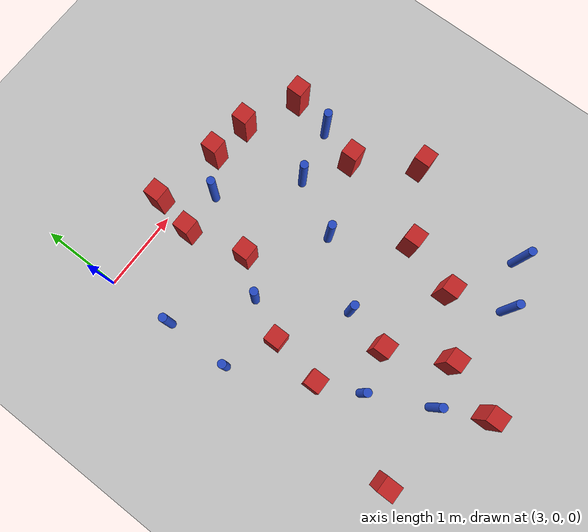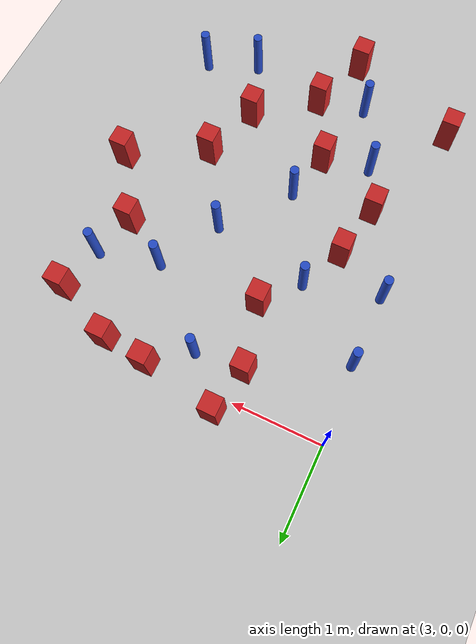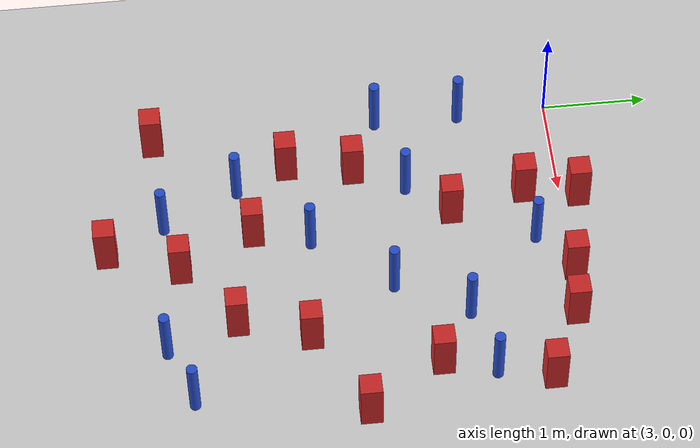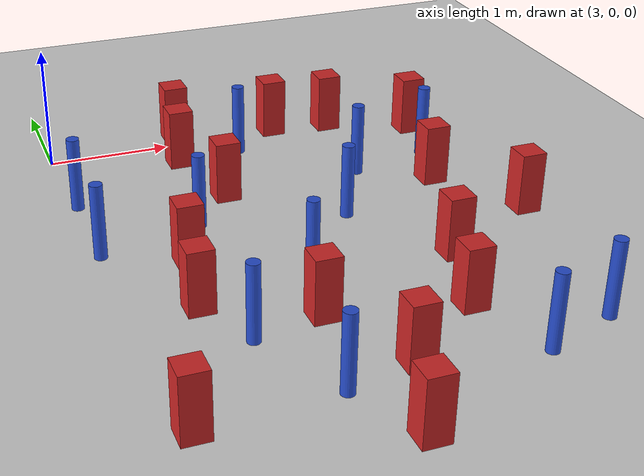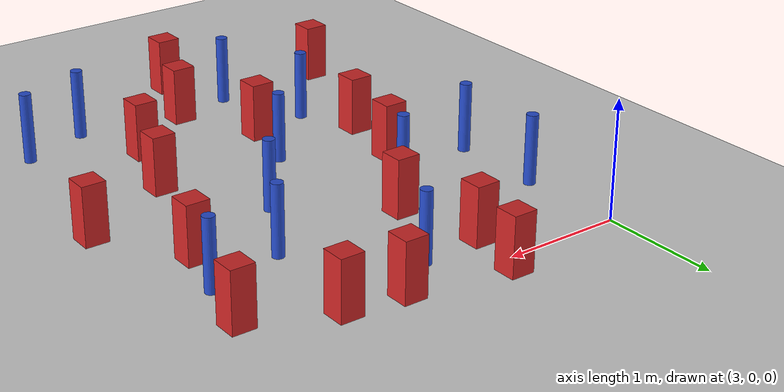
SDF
<sdf version="1.6">
 <world name="default">
  <model name="ground_plane">
   <static>1</static>
   <link name="link">
    <collision name="collision">
     <geometry><plane><normal>0 0 1</normal><size>100 100</size></plane></geometry>
     <surface><friction><ode><mu>100</mu><mu2>50</mu2></ode></friction></surface>
    </collision>
    <visual name="visual">
     <cast_shadows>0</cast_shadows>
     <geometry><plane><normal>0 0 1</normal><size>100 100</size></plane></geometry>
     <material>
      <ambient>1.0 1.0 1.0 1.0</ambient>
      <diffuse>0.8 0.8 0.8 1.0</diffuse>
      <specular>0.01 0.01 0.01 1.000000</specular>
     </material>
    </visual>
   </link>
  </model>
  <model name="pole_obstacle7">
   <static>true</static>
   <pose>5.50749667749 -3.81803511393 2.88873142074e-08 -9.90536690245e-09 4.6021994898e-07 -1.20965994966e-07</pose>
   <link name="link">
    <pose>0 0 0.3 0 -0 0</pose>
    <inertial>
     <mass>1</mass>
     <inertia><ixx>0.145833</ixx><ixy>0</ixy><ixz>0</ixz><iyy>0.145833</iyy><iyz>0</iyz><izz>0.125</izz></inertia>
    </inertial>
    <collision name="collision">
     <geometry><cylinder><radius>0.05</radius><length>.6</length></cylinder></geometry>
    </collision>
    <visual name="visual">
     <geometry><cylinder><radius>0.05</radius><length>.6</length></cylinder></geometry>
     <material>
      <script><name>Gazebo/Blue</name><uri>file://media/materials/scripts/gazebo.material</uri></script>
     </material>
    </visual>
   </link>
  </model>
  <model name="square_post_obstacle31">
   <static>true</static>
   <pose>4.20026988098 -1.06145336706 8.22691968438e-08 7.2212513382e-06 -7.54495500217e-07 2.29674213826e-05</pose>
   <link name="link">
    <pose>0 0 0.25 0 -0 0</pose>
    <inertial>
     <mass>100</mass>
     <inertia>
      <ixx>0.166667</ixx>
      <ixy>0</ixy>
      <ixz>0</ixz>
      <iyy>0.166667</iyy>
      <iyz>0</iyz>
      <izz>0.166667</izz>
     </inertia>
    </inertial>
    <collision name="collision"><geometry><box><size>.2 .2 .5</size></box></geometry></collision>
    <visual name="visual">
     <geometry><box><size>.2 .2 .5</size></box></geometry>
     <material>
      <script><name>Gazebo/Red</name><uri>file://media/materials/scripts/gazebo.material</uri></script>
     </material>
    </visual>
   </link>
  </model>
  <model name="pole_obstacle39">
   <static>true</static>
   <pose>6.07914142735 -3.60286633807 2.88873142074e-08 -9.90536690245e-09 4.6021994898e-07 -1.20965994966e-07</pose>
   <link name="link">
    <pose>0 0 0.3 0 -0 0</pose>
    <inertial>
     <mass>1</mass>
     <inertia><ixx>0.145833</ixx><ixy>0</ixy><ixz>0</ixz><iyy>0.145833</iyy><iyz>0</iyz><izz>0.125</izz></inertia>
    </inertial>
    <collision name="collision">
     <geometry><cylinder><radius>0.05</radius><length>.6</length></cylinder></geometry>
    </collision>
    <visual name="visual">
     <geometry><cylinder><radius>0.05</radius><length>.6</length></cylinder></geometry>
     <material>
      <script><name>Gazebo/Blue</name><uri>file://media/materials/scripts/gazebo.material</uri></script>
     </material>
    </visual>
   </link>
  </model>
  <model name="pole_obstacle48">
   <static>true</static>
   <pose>5.35859806863 -1.01544605363 2.88873142074e-08 -9.90536689582e-09 4.60219948995e-07 -1.20965994957e-07</pose>
   <link name="link">
    <pose>0 0 0.3 0 -0 0</pose>
    <inertial>
     <mass>1</mass>
     <inertia><ixx>0.145833</ixx><ixy>0</ixy><ixz>0</ixz><iyy>0.145833</iyy><iyz>0</iyz><izz>0.125</izz></inertia>
    </inertial>
    <collision name="collision">
     <geometry><cylinder><radius>0.05</radius><length>.6</length></cylinder></geometry>
    </collision>
    <visual name="visual">
     <geometry><cylinder><radius>0.05</radius><length>.6</length></cylinder></geometry>
     <material>
      <script><name>Gazebo/Blue</name><uri>file://media/materials/scripts/gazebo.material</uri></script>
     </material>
    </visual>
   </link>
  </model>
  <model name="square_post_obstacle50">
   <static>true</static>
   <pose>4.96751503702 0.0074582383252 8.22691968438e-08 7.2212513382e-06 -7.54495500217e-07 2.29674213826e-05</pose>
   <link name="link">
    <pose>0 0 0.25 0 -0 0</pose>
    <inertial>
     <mass>100</mass>
     <inertia>
      <ixx>0.166667</ixx>
      <ixy>0</ixy>
      <ixz>0</ixz>
      <iyy>0.166667</iyy>
      <iyz>0</iyz>
      <izz>0.166667</izz>
     </inertia>
    </inertial>
    <collision name="collision"><geometry><box><size>.2 .2 .5</size></box></geometry></collision>
    <visual name="visual">
     <geometry><box><size>.2 .2 .5</size></box></geometry>
     <material>
      <script><name>Gazebo/Red</name><uri>file://media/materials/scripts/gazebo.material</uri></script>
     </material>
    </visual>
   </link>
  </model>
  <model name="square_post_obstacle54">
   <static>true</static>
   <pose>6.33580919159 -2.04430219855 8.22691968438e-08 7.2212513382e-06 -7.54495500217e-07 2.29674213826e-05</pose>
   <link name="link">
    <pose>0 0 0.25 0 -0 0</pose>
    <inertial>
     <mass>100</mass>
     <inertia>
      <ixx>0.166667</ixx>
      <ixy>0</ixy>
      <ixz>0</ixz>
      <iyy>0.166667</iyy>
      <iyz>0</iyz>
      <izz>0.166667</izz>
     </inertia>
    </inertial>
    <collision name="collision"><geometry><box><size>.2 .2 .5</size></box></geometry></collision>
    <visual name="visual">
     <geometry><box><size>.2 .2 .5</size></box></geometry>
     <material>
      <script><name>Gazebo/Red</name><uri>file://media/materials/scripts/gazebo.material</uri></script>
     </material>
    </visual>
   </link>
  </model>
  <model name="square_post_obstacle64">
   <static>true</static>
   <pose>3.52086572161 -2.57109439381 8.22691968438e-08 7.2212513382e-06 -7.54495500217e-07 2.29674213826e-05</pose>
   <link name="link">
    <pose>0 0 0.25 0 -0 0</pose>
    <inertial>
     <mass>100</mass>
     <inertia>
      <ixx>0.166667</ixx>
      <ixy>0</ixy>
      <ixz>0</ixz>
      <iyy>0.166667</iyy>
      <iyz>0</iyz>
      <izz>0.166667</izz>
     </inertia>
    </inertial>
    <collision name="collision"><geometry><box><size>.2 .2 .5</size></box></geometry></collision>
    <visual name="visual">
     <geometry><box><size>.2 .2 .5</size></box></geometry>
     <material>
      <script><name>Gazebo/Red</name><uri>file://media/materials/scripts/gazebo.material</uri></script>
     </material>
    </visual>
   </link>
  </model>
  <model name="square_post_obstacle67">
   <static>true</static>
   <pose>3.1018461195 -3.83028561094 8.22691968438e-08 7.2212513382e-06 -7.54495500217e-07 2.29674213826e-05</pose>
   <link name="link">
    <pose>0 0 0.25 0 -0 0</pose>
    <inertial>
     <mass>100</mass>
     <inertia>
      <ixx>0.166667</ixx>
      <ixy>0</ixy>
      <ixz>0</ixz>
      <iyy>0.166667</iyy>
      <iyz>0</iyz>
      <izz>0.166667</izz>
     </inertia>
    </inertial>
    <collision name="collision"><geometry><box><size>.2 .2 .5</size></box></geometry></collision>
    <visual name="visual">
     <geometry><box><size>.2 .2 .5</size></box></geometry>
     <material>
      <script><name>Gazebo/Red</name><uri>file://media/materials/scripts/gazebo.material</uri></script>
     </material>
    </visual>
   </link>
  </model>
  <model name="pole_obstacle65">
   <static>true</static>
   <pose>6.03024125751 -0.854266662241 2.88873142074e-08 -9.90536689837e-09 4.60219948989e-07 -1.2096599496e-07</pose>
   <link name="link">
    <pose>0 0 0.3 0 -0 0</pose>
    <inertial>
     <mass>1</mass>
     <inertia><ixx>0.145833</ixx><ixy>0</ixy><ixz>0</ixz><iyy>0.145833</iyy><iyz>0</iyz><izz>0.125</izz></inertia>
    </inertial>
    <collision name="collision">
     <geometry><cylinder><radius>0.05</radius><length>.6</length></cylinder></geometry>
    </collision>
    <visual name="visual">
     <geometry><cylinder><radius>0.05</radius><length>.6</length></cylinder></geometry>
     <material>
      <script><name>Gazebo/Blue</name><uri>file://media/materials/scripts/gazebo.material</uri></script>
     </material>
    </visual>
   </link>
  </model>
  <model name="square_post_obstacle69">
   <static>true</static>
   <pose>4.27492066907 -2.94388003536 8.22691968438e-08 7.2212513382e-06 -7.54495500217e-07 2.29674213826e-05</pose>
   <link name="link">
    <pose>0 0 0.25 0 -0 0</pose>
    <inertial>
     <mass>100</mass>
     <inertia>
      <ixx>0.166667</ixx>
      <ixy>0</ixy>
      <ixz>0</ixz>
      <iyy>0.166667</iyy>
      <iyz>0</iyz>
      <izz>0.166667</izz>
     </inertia>
    </inertial>
    <collision name="collision"><geometry><box><size>.2 .2 .5</size></box></geometry></collision>
    <visual name="visual">
     <geometry><box><size>.2 .2 .5</size></box></geometry>
     <material>
      <script><name>Gazebo/Red</name><uri>file://media/materials/scripts/gazebo.material</uri></script>
     </material>
    </visual>
   </link>
  </model>
  <model name="square_post_obstacle73">
   <static>true</static>
   <pose>5.48747656037 -2.49697505619 8.22691968438e-08 7.2212513382e-06 -7.54495500217e-07 2.29674213826e-05</pose>
   <link name="link">
    <pose>0 0 0.25 0 -0 0</pose>
    <inertial>
     <mass>100</mass>
     <inertia>
      <ixx>0.166667</ixx>
      <ixy>0</ixy>
      <ixz>0</ixz>
      <iyy>0.166667</iyy>
      <iyz>0</iyz>
      <izz>0.166667</izz>
     </inertia>
    </inertial>
    <collision name="collision"><geometry><box><size>.2 .2 .5</size></box></geometry></collision>
    <visual name="visual">
     <geometry><box><size>.2 .2 .5</size></box></geometry>
     <material>
      <script><name>Gazebo/Red</name><uri>file://media/materials/scripts/gazebo.material</uri></script>
     </material>
    </visual>
   </link>
  </model>
  <model name="pole_obstacle80">
   <static>true</static>
   <pose>4.985046342 -1.68550418916 2.88873142074e-08 -9.90536689445e-09 4.60219948999e-07 -1.20965994956e-07</pose>
   <link name="link">
    <pose>0 0 0.3 0 -0 0</pose>
    <inertial>
     <mass>1</mass>
     <inertia><ixx>0.145833</ixx><ixy>0</ixy><ixz>0</ixz><iyy>0.145833</iyy><iyz>0</iyz><izz>0.125</izz></inertia>
    </inertial>
    <collision name="collision">
     <geometry><cylinder><radius>0.05</radius><length>.6</length></cylinder></geometry>
    </collision>
    <visual name="visual">
     <geometry><cylinder><radius>0.05</radius><length>.6</length></cylinder></geometry>
     <material>
      <script><name>Gazebo/Blue</name><uri>file://media/materials/scripts/gazebo.material</uri></script>
     </material>
    </visual>
   </link>
  </model>
  <model name="pole_obstacle93">
   <static>true</static>
   <pose>3.0476981293 -0.860500871558 2.88873142074e-08 -9.90536689285e-09 4.60219949002e-07 -1.20965994953e-07</pose>
   <link name="link">
    <pose>0 0 0.3 0 -0 0</pose>
    <inertial>
     <mass>1</mass>
     <inertia><ixx>0.145833</ixx><ixy>0</ixy><ixz>0</ixz><iyy>0.145833</iyy><iyz>0</iyz><izz>0.125</izz></inertia>
    </inertial>
    <collision name="collision">
     <geometry><cylinder><radius>0.05</radius><length>.6</length></cylinder></geometry>
    </collision>
    <visual name="visual">
     <geometry><cylinder><radius>0.05</radius><length>.6</length></cylinder></geometry>
     <material>
      <script><name>Gazebo/Blue</name><uri>file://media/materials/scripts/gazebo.material</uri></script>
     </material>
    </visual>
   </link>
  </model>
  <model name="square_post_obstacle84">
   <static>true</static>
   <pose>5.2700895419 -3.16116330334 8.22691968438e-08 7.2212513382e-06 -7.54495500217e-07 2.29674213826e-05</pose>
   <link name="link">
    <pose>0 0 0.25 0 -0 0</pose>
    <inertial>
     <mass>100</mass>
     <inertia>
      <ixx>0.166667</ixx>
      <ixy>0</ixy>
      <ixz>0</ixz>
      <iyy>0.166667</iyy>
      <iyz>0</iyz>
      <izz>0.166667</izz>
     </inertia>
    </inertial>
    <collision name="collision"><geometry><box><size>.2 .2 .5</size></box></geometry></collision>
    <visual name="visual">
     <geometry><box><size>.2 .2 .5</size></box></geometry>
     <material>
      <script><name>Gazebo/Red</name><uri>file://media/materials/scripts/gazebo.material</uri></script>
     </material>
    </visual>
   </link>
  </model>
  <model name="square_post_obstacle89">
   <static>true</static>
   <pose>4.37964779241 -4.32261460774 8.22691968438e-08 7.22125133819e-06 -7.54495500217e-07 2.29674213826e-05</pose>
   <link name="link">
    <pose>0 0 0.25 0 -0 0</pose>
    <inertial>
     <mass>100</mass>
     <inertia>
      <ixx>0.166667</ixx>
      <ixy>0</ixy>
      <ixz>0</ixz>
      <iyy>0.166667</iyy>
      <iyz>0</iyz>
      <izz>0.166667</izz>
     </inertia>
    </inertial>
    <collision name="collision"><geometry><box><size>.2 .2 .5</size></box></geometry></collision>
    <visual name="visual">
     <geometry><box><size>.2 .2 .5</size></box></geometry>
     <material>
      <script><name>Gazebo/Red</name><uri>file://media/materials/scripts/gazebo.material</uri></script>
     </material>
    </visual>
   </link>
  </model>
  <model name="pole_obstacle114">
   <static>true</static>
   <pose>3.0493330959 -1.67011264166 2.88873142074e-08 -9.90536689395e-09 4.60219949e-07 -1.20965994953e-07</pose>
   <link name="link">
    <pose>0 0 0.3 0 -0 0</pose>
    <inertial>
     <mass>1</mass>
     <inertia><ixx>0.145833</ixx><ixy>0</ixy><ixz>0</ixz><iyy>0.145833</iyy><iyz>0</iyz><izz>0.125</izz></inertia>
    </inertial>
    <collision name="collision">
     <geometry><cylinder><radius>0.05</radius><length>.6</length></cylinder></geometry>
    </collision>
    <visual name="visual">
     <geometry><cylinder><radius>0.05</radius><length>.6</length></cylinder></geometry>
     <material>
      <script><name>Gazebo/Blue</name><uri>file://media/materials/scripts/gazebo.material</uri></script>
     </material>
    </visual>
   </link>
  </model>
  <model name="square_post_obstacle122">
   <static>true</static>
   <pose>5.46742240595 -0.0497189341731 8.22691968438e-08 7.2212513382e-06 -7.54495500217e-07 2.29674213826e-05</pose>
   <link name="link">
    <pose>0 0 0.25 0 -0 0</pose>
    <inertial>
     <mass>100</mass>
     <inertia>
      <ixx>0.166667</ixx>
      <ixy>0</ixy>
      <ixz>0</ixz>
      <iyy>0.166667</iyy>
      <iyz>0</iyz>
      <izz>0.166667</izz>
     </inertia>
    </inertial>
    <collision name="collision"><geometry><box><size>.2 .2 .5</size></box></geometry></collision>
    <visual name="visual">
     <geometry><box><size>.2 .2 .5</size></box></geometry>
     <material>
      <script><name>Gazebo/Red</name><uri>file://media/materials/scripts/gazebo.material</uri></script>
     </material>
    </visual>
   </link>
  </model>
  <model name="square_post_obstacle125">
   <static>true</static>
   <pose>4.0246564746 -0.345391969822 8.22691968438e-08 7.2212513382e-06 -7.54495500217e-07 2.29674213826e-05</pose>
   <link name="link">
    <pose>0 0 0.25 0 -0 0</pose>
    <inertial>
     <mass>100</mass>
     <inertia>
      <ixx>0.166667</ixx>
      <ixy>0</ixy>
      <ixz>0</ixz>
      <iyy>0.166667</iyy>
      <iyz>0</iyz>
      <izz>0.166667</izz>
     </inertia>
    </inertial>
    <collision name="collision"><geometry><box><size>.2 .2 .5</size></box></geometry></collision>
    <visual name="visual">
     <geometry><box><size>.2 .2 .5</size></box></geometry>
     <material>
      <script><name>Gazebo/Red</name><uri>file://media/materials/scripts/gazebo.material</uri></script>
     </material>
    </visual>
   </link>
  </model>
  <model name="pole_obstacle142">
   <static>true</static>
   <pose>4.56555406588 -0.298374908035 2.88873142074e-08 -9.9053668927e-09 4.60219949003e-07 -1.20965994954e-07</pose>
   <link name="link">
    <pose>0 0 0.3 0 -0 0</pose>
    <inertial>
     <mass>1</mass>
     <inertia><ixx>0.145833</ixx><ixy>0</ixy><ixz>0</ixz><iyy>0.145833</iyy><iyz>0</iyz><izz>0.125</izz></inertia>
    </inertial>
    <collision name="collision">
     <geometry><cylinder><radius>0.05</radius><length>.6</length></cylinder></geometry>
    </collision>
    <visual name="visual">
     <geometry><cylinder><radius>0.05</radius><length>.6</length></cylinder></geometry>
     <material>
      <script><name>Gazebo/Blue</name><uri>file://media/materials/scripts/gazebo.material</uri></script>
     </material>
    </visual>
   </link>
  </model>
  <model name="pole_obstacle150">
   <static>true</static>
   <pose>4.41091722289 -2.41075555168 2.88873142074e-08 -9.90536690245e-09 4.6021994898e-07 -1.20965994966e-07</pose>
   <link name="link">
    <pose>0 0 0.3 0 -0 0</pose>
    <inertial>
     <mass>1</mass>
     <inertia><ixx>0.145833</ixx><ixy>0</ixy><ixz>0</ixz><iyy>0.145833</iyy><iyz>0</iyz><izz>0.125</izz></inertia>
    </inertial>
    <collision name="collision">
     <geometry><cylinder><radius>0.05</radius><length>.6</length></cylinder></geometry>
    </collision>
    <visual name="visual">
     <geometry><cylinder><radius>0.05</radius><length>.6</length></cylinder></geometry>
     <material>
      <script><name>Gazebo/Blue</name><uri>file://media/materials/scripts/gazebo.material</uri></script>
     </material>
    </visual>
   </link>
  </model>
  <model name="square_post_obstacle156">
   <static>true</static>
   <pose>3.63489516402 -1.94305860437 8.22691968438e-08 7.22125133819e-06 -7.54495500217e-07 2.29674213826e-05</pose>
   <link name="link">
    <pose>0 0 0.25 0 -0 0</pose>
    <inertial>
     <mass>100</mass>
     <inertia>
      <ixx>0.166667</ixx>
      <ixy>0</ixy>
      <ixz>0</ixz>
      <iyy>0.166667</iyy>
      <iyz>0</iyz>
      <izz>0.166667</izz>
     </inertia>
    </inertial>
    <collision name="collision"><geometry><box><size>.2 .2 .5</size></box></geometry></collision>
    <visual name="visual">
     <geometry><box><size>.2 .2 .5</size></box></geometry>
     <material>
      <script><name>Gazebo/Red</name><uri>file://media/materials/scripts/gazebo.material</uri></script>
     </material>
    </visual>
   </link>
  </model>
  <model name="pole_obstacle176">
   <static>true</static>
   <pose>3.74537529995 -3.06199445391 2.88873142074e-08 -9.90536690232e-09 4.6021994898e-07 -1.20965994968e-07</pose>
   <link name="link">
    <pose>0 0 0.3 0 -0 0</pose>
    <inertial>
     <mass>1</mass>
     <inertia><ixx>0.145833</ixx><ixy>0</ixy><ixz>0</ixz><iyy>0.145833</iyy><iyz>0</iyz><izz>0.125</izz></inertia>
    </inertial>
    <collision name="collision">
     <geometry><cylinder><radius>0.05</radius><length>.6</length></cylinder></geometry>
    </collision>
    <visual name="visual">
     <geometry><cylinder><radius>0.05</radius><length>.6</length></cylinder></geometry>
     <material>
      <script><name>Gazebo/Blue</name><uri>file://media/materials/scripts/gazebo.material</uri></script>
     </material>
    </visual>
   </link>
  </model>
  <model name="square_post_obstacle168">
   <static>true</static>
   <pose>5.88237172255 -1.33748804982 8.22691968438e-08 7.2212513382e-06 -7.54495500217e-07 2.29674213826e-05</pose>
   <link name="link">
    <pose>0 0 0.25 0 -0 0</pose>
    <inertial>
     <mass>100</mass>
     <inertia>
      <ixx>0.166667</ixx>
      <ixy>0</ixy>
      <ixz>0</ixz>
      <iyy>0.166667</iyy>
      <iyz>0</iyz>
      <izz>0.166667</izz>
     </inertia>
    </inertial>
    <collision name="collision"><geometry><box><size>.2 .2 .5</size></box></geometry></collision>
    <visual name="visual">
     <geometry><box><size>.2 .2 .5</size></box></geometry>
     <material>
      <script><name>Gazebo/Red</name><uri>file://media/materials/scripts/gazebo.material</uri></script>
     </material>
    </visual>
   </link>
  </model>
  <model name="pole_obstacle181">
   <static>true</static>
   <pose>4.09976904861 -3.77664200436 2.88873142074e-08 -9.90536690245e-09 4.6021994898e-07 -1.20965994966e-07</pose>
   <link name="link">
    <pose>0 0 0.3 0 -0 0</pose>
    <inertial>
     <mass>1</mass>
     <inertia><ixx>0.145833</ixx><ixy>0</ixy><ixz>0</ixz><iyy>0.145833</iyy><iyz>0</iyz><izz>0.125</izz></inertia>
    </inertial>
    <collision name="collision">
     <geometry><cylinder><radius>0.05</radius><length>.6</length></cylinder></geometry>
    </collision>
    <visual name="visual">
     <geometry><cylinder><radius>0.05</radius><length>.6</length></cylinder></geometry>
     <material>
      <script><name>Gazebo/Blue</name><uri>file://media/materials/scripts/gazebo.material</uri></script>
     </material>
    </visual>
   </link>
  </model>
  <model name="square_post_obstacle172">
   <static>true</static>
   <pose>6.13858123644 -0.351269854407 8.22691968438e-08 7.2212513382e-06 -7.54495500217e-07 2.29674213826e-05</pose>
   <link name="link">
    <pose>0 0 0.25 0 -0 0</pose>
    <inertial>
     <mass>100</mass>
     <inertia>
      <ixx>0.166667</ixx>
      <ixy>0</ixy>
      <ixz>0</ixz>
      <iyy>0.166667</iyy>
      <iyz>0</iyz>
      <izz>0.166667</izz>
     </inertia>
    </inertial>
    <collision name="collision"><geometry><box><size>.2 .2 .5</size></box></geometry></collision>
    <visual name="visual">
     <geometry><box><size>.2 .2 .5</size></box></geometry>
     <material>
      <script><name>Gazebo/Red</name><uri>file://media/materials/scripts/gazebo.material</uri></script>
     </material>
    </visual>
   </link>
  </model>
  <model name="square_post_obstacle173">
   <static>true</static>
   <pose>4.12269987749 0.162556284942 8.22691968438e-08 7.2212513382e-06 -7.54495500217e-07 2.29674213826e-05</pose>
   <link name="link">
    <pose>0 0 0.25 0 -0 0</pose>
    <inertial>
     <mass>100</mass>
     <inertia>
      <ixx>0.166667</ixx>
      <ixy>0</ixy>
      <ixz>0</ixz>
      <iyy>0.166667</iyy>
      <iyz>0</iyz>
      <izz>0.166667</izz>
     </inertia>
    </inertial>
    <collision name="collision"><geometry><box><size>.2 .2 .5</size></box></geometry></collision>
    <visual name="visual">
     <geometry><box><size>.2 .2 .5</size></box></geometry>
     <material>
      <script><name>Gazebo/Red</name><uri>file://media/materials/scripts/gazebo.material</uri></script>
     </material>
    </visual>
   </link>
  </model>
  <model name="pole_obstacle207">
   <static>true</static>
   <pose>3.86675022084 -1.45819266499 2.88873142074e-08 -9.90536689395e-09 4.60219949e-07 -1.20965994953e-07</pose>
   <link name="link">
    <pose>0 0 0.3 0 -0 0</pose>
    <inertial>
     <mass>1</mass>
     <inertia><ixx>0.145833</ixx><ixy>0</ixy><ixz>0</ixz><iyy>0.145833</iyy><iyz>0</iyz><izz>0.125</izz></inertia>
    </inertial>
    <collision name="collision">
     <geometry><cylinder><radius>0.05</radius><length>.6</length></cylinder></geometry>
    </collision>
    <visual name="visual">
     <geometry><cylinder><radius>0.05</radius><length>.6</length></cylinder></geometry>
     <material>
      <script><name>Gazebo/Blue</name><uri>file://media/materials/scripts/gazebo.material</uri></script>
     </material>
    </visual>
   </link>
  </model>
  <model name="square_post_obstacle213">
   <static>true</static>
   <pose>4.62676003262 -3.64485003534 8.22691968438e-08 7.2212513382e-06 -7.54495500217e-07 2.29674213826e-05</pose>
   <link name="link">
    <pose>0 0 0.25 0 -0 0</pose>
    <inertial>
     <mass>100</mass>
     <inertia>
      <ixx>0.166667</ixx>
      <ixy>0</ixy>
      <ixz>0</ixz>
      <iyy>0.166667</iyy>
      <iyz>0</iyz>
      <izz>0.166667</izz>
     </inertia>
    </inertial>
    <collision name="collision"><geometry><box><size>.2 .2 .5</size></box></geometry></collision>
    <visual name="visual">
     <geometry><box><size>.2 .2 .5</size></box></geometry>
     <material>
      <script><name>Gazebo/Red</name><uri>file://media/materials/scripts/gazebo.material</uri></script>
     </material>
    </visual>
   </link>
  </model>
 </world>
</sdf>
